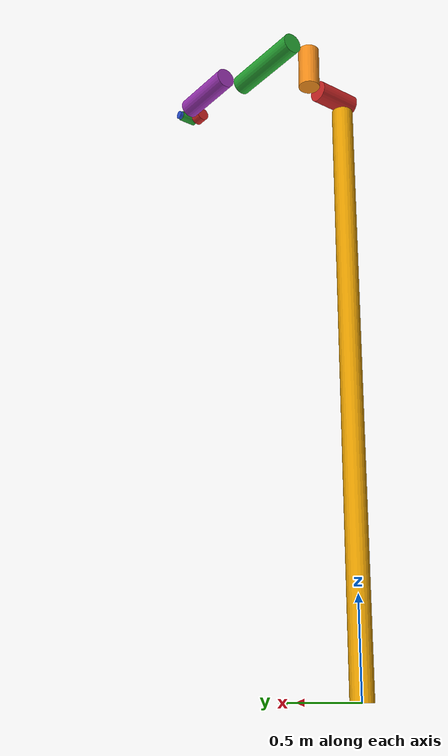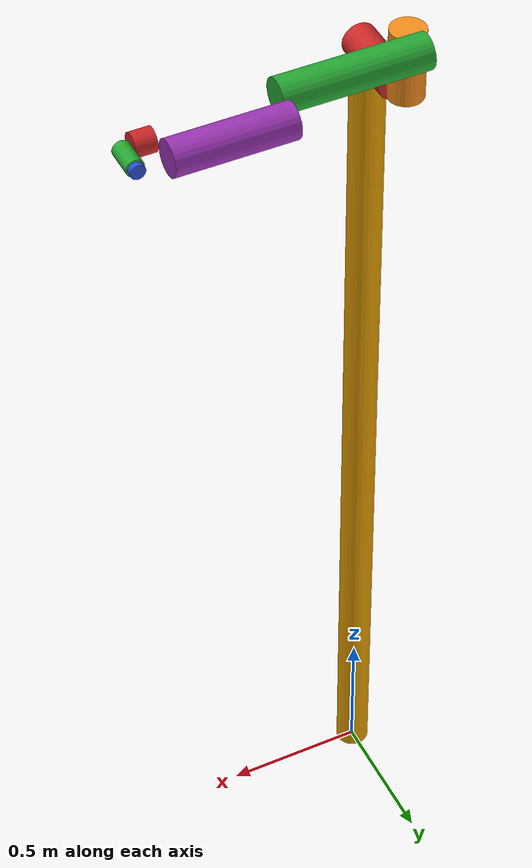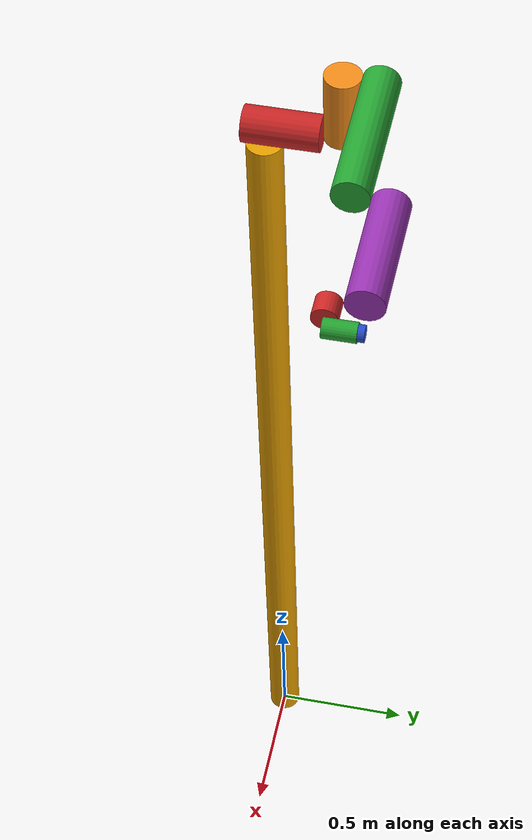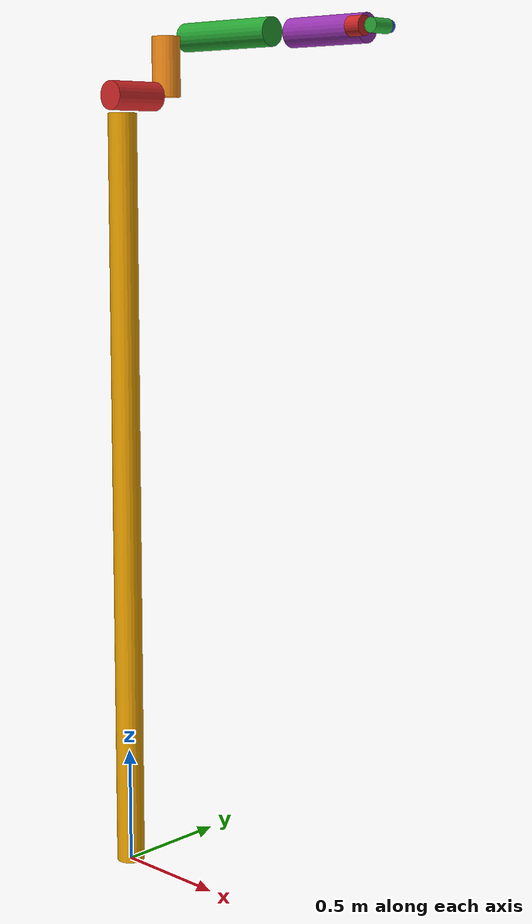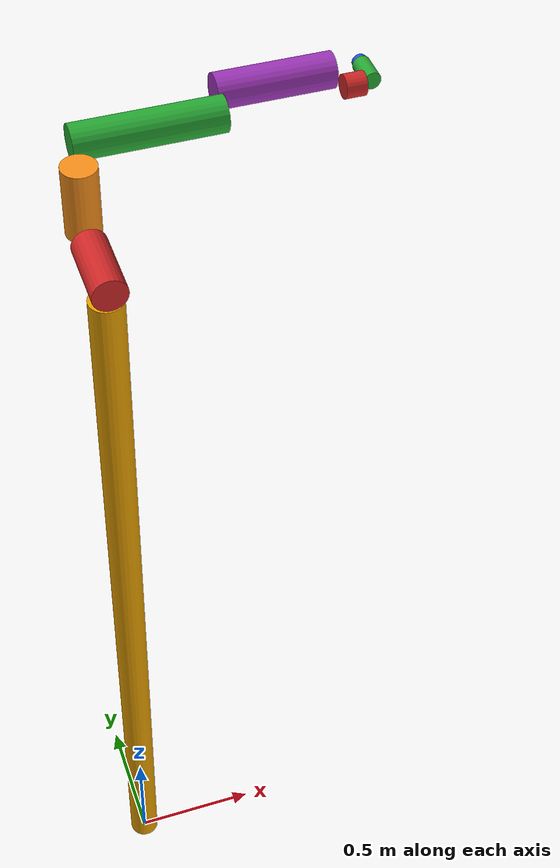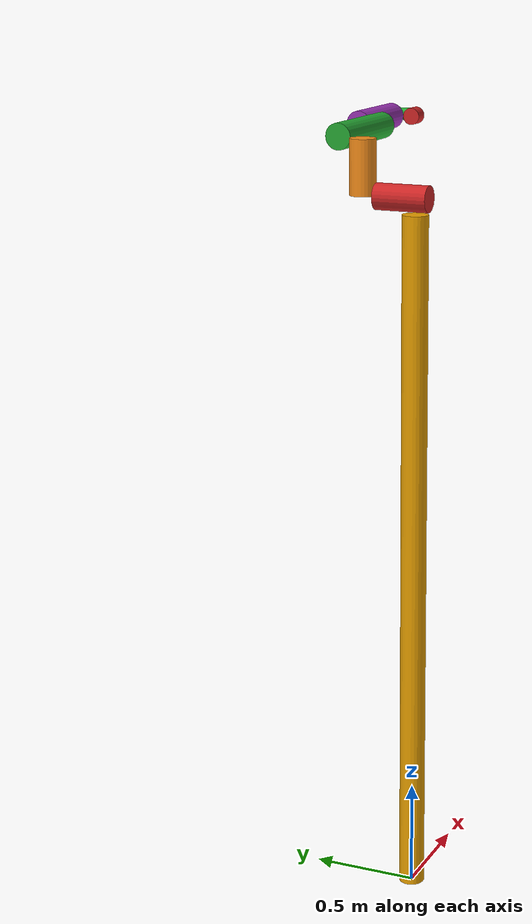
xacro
<?xml version="1.0"?>
<robot xmlns:xacro="http://wiki.ros.org/xacro"
       name="ur5" >

  <!-- common stuff -->
  <xacro:include filename="$(find man_gazebo)/urdf/common.gazebo.xacro" />

  <xacro:include filename="$(find man_gazebo)/urdf/manip.urdf.xacro" />

  <xacro:arm_robot prefix=""/>

<link name="world" />

  <joint name="world_joint" type="fixed">
    <parent link="world" />
    <child link = "base_link" />
    <origin xyz="0 0 0" rpy="0.0 0.0 0.0" />
  </joint>

</robot>

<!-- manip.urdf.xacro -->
<robot xmlns:xacro="http://wiki.ros.org/xacro">
  <xacro:include filename="$(find man_gazebo)/urdf/6dof/transmission_6dof.xacro" />
  <xacro:include filename="$(find man_gazebo)/urdf/gazebo.xacro" />

  <xacro:macro name="cylinder_inertial" params="radius length mass *origin">
    <inertial>
      <mass value="${mass}" />
      <xacro:insert_block name="origin" />
      <inertia ixx="${0.0833333 * mass * (3 * radius * radius + length * length)}" ixy="0.0" ixz="0.0"
        iyy="${0.0833333 * mass * (3 * radius * radius + length * length)}" iyz="0.0"
        izz="${0.5 * mass * radius * radius}" />
    </inertial>
  </xacro:macro>

<xacro:macro name="joint_limit" params="joint_type link_length ">
	<xacro:if value="${joint_type == 'revolute'}"  >
		<xacro:property name="joint_upper_limit" value="${pi}" />
		<xacro:property name="joint_lower_limit" value="${-pi}" />
	</xacro:if>
	<xacro:unless value="${joint_type == 'revolute'}"  >
		<xacro:property name="joint_upper_limit" value="${2*link_length}" />
		<xacro:property name="joint_lower_limit" value="${0}" />
	</xacro:unless>
	<limit lower="${joint_lower_limit}" upper="${joint_upper_limit}" effort="150.0" velocity="3.15"/>
</xacro:macro>

  <xacro:macro name="arm_robot" params="prefix ">

	<xacro:property name="joint0_type" value="prismatic" />
    <xacro:property name="joint1_type" value="revolute" />
	<xacro:property name="joint2_type" value="revolute" />
	<xacro:property name="joint3_type" value="revolute" />
	<xacro:property name="joint4_type" value="revolute" />
	<xacro:property name="joint5_type" value="revolute" />
	<xacro:property name="joint6_type" value="revolute" />

	<xacro:property name="joint0_axe" value="0 0 1" />
	<xacro:property name="joint1_axe" value="0 0 1" />
	<xacro:property name="joint2_axe" value="0 1 0" />
	<xacro:property name="joint3_axe" value="0 1 0" />
	<xacro:property name="joint4_axe" value="0 1 0" />
	<xacro:property name="joint5_axe" value="0 1 0" />
	<xacro:property name="joint6_axe" value="0 0 1" />

	<xacro:property name="link0_length" value="0.25" />
    <xacro:property name="base_length"  value="3.25" />
	<xacro:property name="link1_length" value="0.25" />
	<xacro:property name="link2_length" value="0.5" />
	<xacro:property name="link3_length" value="0.4" />
	<xacro:property name="link4_length" value="0.07" />
	<xacro:property name="link5_length" value="0.1" />
	<xacro:property name="link6_length" value="0.02" />

    <!-- Inertia parameters -->
	<xacro:property name="link0_mass" value="40.7" />
    <xacro:property name="base_mass" value="1.0" />
    <xacro:property name="link1_mass" value="3.7" />
    <xacro:property name="link2_mass" value="8.393" />
    <xacro:property name="link3_mass" value="2.275" />
    <xacro:property name="link4_mass" value="1.219" />
    <xacro:property name="link5_mass" value="1.219" />
    <xacro:property name="link6_mass" value="0.1879" />

	<xacro:property name="link0_radius" value="0.060" />
	<xacro:property name="base_radius" value="0.060" />
    <xacro:property name="link1_radius" value="0.060" />
    <xacro:property name="link2_radius" value="0.060" />
    <xacro:property name="link3_radius" value="0.060" />
    <xacro:property name="link4_radius" value="0.040" />
    <xacro:property name="link5_radius" value="0.030" />
    <xacro:property name="link6_radius" value="0.025" />

	<!--   Base Link -->
    <link name="${prefix}base_link" >
      <visual>
		<origin xyz="0 0 ${base_length/2}" rpy="0 0 0" />
        <geometry>
 			<cylinder radius="${base_radius}" length="${base_length}"/>
        </geometry>
      </visual>
      <collision>
			<origin xyz="0 0 ${base_length/2}" rpy="0 0 0" />
        <geometry>
			<cylinder radius="${base_radius}" length="${base_length}"/>
        </geometry>
      </collision>
      <xacro:cylinder_inertial radius="${base_radius}" length="${base_length}" mass="${base_mass}">
        <origin xyz="0.0 0.0 ${base_length/2}" rpy="0 0 0" />
      </xacro:cylinder_inertial>
    </link>

<!--  joint 0	-->
    <joint name="${prefix}joint0" type="${joint0_type}">
      <parent link="${prefix}base_link" />
      <child link = "${prefix}link0" />
      <origin xyz="0.0 0 ${base_length + link0_radius+0.01}" rpy="${-pi/2} 0.0 0" />
      <axis xyz="${joint0_axe}" />
	  <xacro:joint_limit joint_type="${joint0_type}" link_length="${link0_length*6}"/>
      <dynamics damping="0.0" friction="0.0"/>
    </joint>

<!--  link 0 -->
    <link name="${prefix}link0">
      <visual>
		<origin xyz="0 0 ${link0_radius} " rpy="0 0 0" />
        <geometry>
			<cylinder radius="${link0_radius}" length="${link0_length}"/>
        </geometry>
      </visual>
      <collision>
		 <origin xyz="0 0 ${link0_radius}" rpy="0 0 0" />
        <geometry>
			<cylinder radius="${link0_radius}" length="${link0_length}"  mass="${link0_mass}"/>
        </geometry>
      </collision>
      <xacro:cylinder_inertial radius="${link0_radius}" length="${link0_length}" mass="${link0_mass}">
        <origin xyz="0.0 0.0 ${link0_radius}" rpy="0 0 0" />
      </xacro:cylinder_inertial>
    </link>

<!--  joint 1	-->
    <joint name="${prefix}joint1" type="${joint1_type}">
      <parent link="${prefix}link0" />
      <child link = "${prefix}link1" />
      <origin xyz="0.0 0.0 ${link0_length}" rpy="${pi/2} 0 0" />
      <axis xyz="${joint1_axe}" />
	  <xacro:joint_limit joint_type="${joint1_type}" link_length="${link1_length}"/>
      <dynamics damping="0.0" friction="0.0"/>
    </joint>
<!--  link 1  -->
    <link name="${prefix}link1">
      <visual>
		<origin xyz="0 0 ${link1_length/2} " rpy="0 0 0" />
        <geometry>
			<cylinder radius="${link1_radius}" length="${link1_length}"/>
        </geometry>
      </visual>
      <collision>
		 <origin xyz="0 0 ${link1_length/2}" rpy="0 0 0" />
        <geometry>
			<cylinder radius="${link1_radius}" length="${link1_length}"  mass="${link1_mass}"/>
        </geometry>
      </collision>
      <xacro:cylinder_inertial radius="${link1_radius}" length="${link1_length}" mass="${link1_mass}">
        <origin xyz="0.0 0.0 ${link1_length/2}" rpy="0 0 0" />
      </xacro:cylinder_inertial>
    </link>
<!--  joint 2	-->
    <joint name="${prefix}joint2" type="${joint2_type}">
      <parent link="${prefix}link1" />
      <child link = "${prefix}link2" />
      <origin xyz="0.0 ${link1_radius * 2.0} ${link1_length }" rpy="0.0 ${pi/2.0} 0.0" />
      <axis xyz="${joint2_axe}" />
	  <xacro:joint_limit joint_type="${joint2_type}" link_length="${link2_length}"/>
      <dynamics damping="0.0" friction="0.0"/>
    </joint>
<!-- link 2	-->
    <link name="${prefix}link2">
      <visual>
		<origin xyz="0 0 ${link2_length / 2}" rpy="0 0 0" />
        <geometry>
			<cylinder radius="${link2_radius}" length="${link2_length}"/>
        </geometry>
      </visual>
      <collision>
	    <origin xyz="0 0 ${link2_length / 2 }" rpy="0 0 0" />
        <geometry>
		<cylinder radius="${link2_radius}" length="${link2_length}"/>
        </geometry>
      </collision>
      <xacro:cylinder_inertial radius="${link2_radius}" length="${link2_length}" mass="${link2_mass}">
        <origin xyz="0.0 0.0 ${link2_length / 2 }" rpy="0 0 0" />
      </xacro:cylinder_inertial>
    </link>
<!--  joint 3	-->
    <joint name="${prefix}joint3" type="${joint3_type}">
      <parent link="${prefix}link2" />
      <child link = "${prefix}link3" />
      <origin xyz="0.0 ${link2_radius*2.0} ${link2_length}" rpy="0.0 0.0 0.0" />
      <axis xyz="${joint3_axe}" />
	  <xacro:joint_limit joint_type="${joint3_type}" link_length="${link3_length}"/>
      <dynamics damping="0.0" friction="0.0"/>
    </joint>

<!--  link 3 -->
    <link name="${prefix}link3">
      <visual>
		<origin xyz="0 0 ${link3_length / 2 }" rpy="0 0 0" />
        <geometry>
		<cylinder radius="${link3_radius}" length="${link3_length}"/>
        </geometry>
      </visual>
      <collision>
		<origin xyz="0 0 ${link3_length / 2 }" rpy="0 0 0" />
        <geometry>
			<cylinder radius="${link3_radius}" length="${link3_length}"/>
        </geometry>
      </collision>
      <xacro:cylinder_inertial radius="${link3_radius}" length="${link3_length}" mass="${link3_mass}">
        <origin xyz="0 0 ${link3_length / 2 }" rpy="0 0 0" />
      </xacro:cylinder_inertial>
    </link>
<!--  joint 4	-->
    <joint name="${prefix}joint4" type="${joint4_type}">
      <parent link="${prefix}link3" />
      <child link = "${prefix}link4" />
      <origin xyz="0 -${link4_radius + link3_radius } ${link3_length}" rpy="0.0 0 0.0" />
      <axis xyz="${joint4_axe} " />
	  <xacro:joint_limit joint_type="${joint4_type}" link_length="${link4_length}"/>
      <dynamics damping="0.0" friction="0.0"/>
    </joint>

<!-- link 4 -->
    <link name="${prefix}link4">
      <visual>
		<origin xyz="0 0 ${link4_length/2}" rpy="0 0 0" />
        <geometry>
			   <cylinder radius="${link4_radius}" length="${link4_length}"/>
        </geometry>
      </visual>
      <collision>
		<origin xyz="0 0 ${link4_length/2}" rpy="0 0 0" />
        <geometry>
			   <cylinder radius="${link4_radius}" length="${link4_length}"/>
        </geometry>
      </collision>
      <xacro:cylinder_inertial radius="${link4_radius}" length="${link4_length}" mass="${link4_mass}">
        <origin xyz="0 0 ${link4_length/2}" rpy="0 0 0" />
      </xacro:cylinder_inertial>
    </link>
<!--  joint 5	-->
    <joint name="${prefix}joint5" type="${joint5_type}">
      <parent link="${prefix}link4" />
      <child link = "${prefix}link5" />
      <origin xyz="0 0 ${link4_length+link5_radius}" rpy=" ${-pi/2} 0 0" />
      <axis xyz="${joint5_axe}" />
	  <xacro:joint_limit joint_type="${joint5_type}" link_length="${link5_length}"/>
      <dynamics damping="0.0" friction="0.0"/>
    </joint>

<!-- link 5 -->
    <link name="${prefix}link5">
      <visual>
        <origin xyz=" 0 0 ${link5_length/2} " rpy="0 0 0" />
        <geometry>
		<cylinder radius="${link5_radius}" length="${link5_length}"/>
        </geometry>
      </visual>
      <collision>
        <origin xyz="0 0 ${link5_length/2} " rpy="0 0 0" />
        <geometry>
		<cylinder radius="${link5_radius}" length="${link5_length}"/>
        </geometry>
      </collision>
      <xacro:cylinder_inertial radius="${link5_radius}" length="${link5_length}" mass="${link5_mass}">
        <origin xyz="0 0 ${link5_length/2}" rpy="0 0 0" />
      </xacro:cylinder_inertial>
    </link>
<!--  joint 6	-->
    <joint name="${prefix}joint6" type="${joint6_type}">
      <parent link="${prefix}link5" />
      <child link = "${prefix}link6" />
      <origin xyz="0 0 ${link5_length } " rpy="0 0 0" />
      <axis xyz="${joint6_axe}" />
	  <xacro:joint_limit joint_type="${joint6_type}" link_length="${link6_length}"/>
      <dynamics damping="0.0" friction="0.0"/>
    </joint>
<!-- link 6 -->
    <link name="${prefix}link6">
      <visual>
        <origin xyz="0 0 ${link6_length/2}" rpy="0 0 0" />
        <geometry>
		<cylinder radius="${link6_radius}" length="${link6_length}"/>
        </geometry>
      </visual>
      <collision>
        <origin xyz="0 0 ${link6_length/2}" rpy="0 0 0" />
        <geometry>
		<cylinder radius="${link6_radius}" length="${link6_length}"/>
        </geometry>
      </collision>
      <xacro:cylinder_inertial radius="${link6_radius}" length="${link6_length}" mass="${link6_mass}">
        <origin xyz="0 0 ${link6_length/2}" rpy="0 0 0" />
      </xacro:cylinder_inertial>
    </link>

         <!-- fake joint - the rotation about z axe of the camera is not important -->
        <joint name="fake_joint" type="revolute">
      <parent link="${prefix}link6" />
      <child link = "camera_link" />
      <origin xyz="0.0  0.0 ${link6_length}" rpy="0.0 0.0 0" />
      <axis xyz="0 0 1"/>
      <xacro:joint_limit joint_type="revolute" link_length="0.1"/>
      <dynamics damping="0.0" friction="0.0"/>
        </joint>

    <!-- camera link -->
        <link name="camera_link">
          <collision>
            <geometry>
              <box size="0.01 0.01 0.01"/>
            </geometry>
            <origin rpy="0 0 0" xyz="0 0 0.005"/>
          </collision>
          <xacro:cylinder_inertial radius="0.01" length="0.01" mass="0.01">
            <origin xyz="0.0 0.0 0.005" rpy="0 0 0" />
          </xacro:cylinder_inertial>
        </link>

    <joint name="${prefix}ee_fixed_joint" type="fixed">
      <parent link="${prefix}camera_link" />
      <child link = "${prefix}ee_link" />
      <origin xyz="0.0  0.0 0.01" rpy="0.0 0.0 0" />

    </joint>

<!-- ee link -->
    <link name="${prefix}ee_link">
      <collision>
        <geometry>
          <box size="0.01 0.01 0.01"/>
        </geometry>
        <origin rpy="0 0 0" xyz="0 0 0.005"/>
      </collision>
	</link>

    <xacro:arm_transmission prefix="${prefix}" />
    <xacro:arm_gazebo prefix="${prefix}" />

  </xacro:macro>
</robot>

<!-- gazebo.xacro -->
<robot xmlns:xacro="http://wiki.ros.org/xacro">

<material name="Orange">
    <color rgba="${255/255} ${108/255} ${10/255} 1.0"/>
  </material>
<material name="Green">
    <color rgba="${0/255} ${255/255} ${0/255} 0.7"/>
</material>
<material name="LightGrey">
     <color rgba="0.7 0.7 0.7 1.0"/>
</material>
<material name="Blue">
     <color rgba="${0/255} ${0/255} ${255/255} 1.0"/>
</material>
<material name="Red">
     <color rgba="${255/255} ${0/255} ${0/255} 1.0"/>
</material>
<material name="Purple">
     <color rgba="0.5 0 0.5 1.0"/>
</material>

  <xacro:macro name="arm_gazebo" params="prefix">
    <gazebo reference="${prefix}link0">
      <selfCollide>true</selfCollide>
	  <material>Gazebo/Red</material>
    </gazebo>
    <gazebo reference="${prefix}link1">
      <selfCollide>true</selfCollide>
	  <material>Gazebo/Orange</material>
    </gazebo>
    <gazebo reference="${prefix}link2">
      <selfCollide>true</selfCollide>
	  <material>Gazebo/Green</material>
    </gazebo>
    <gazebo reference="${prefix}link3">
      <selfCollide>true</selfCollide>
	  <material>Gazebo/Purple</material>
    </gazebo>
    <gazebo reference="${prefix}link4">
      <selfCollide>true</selfCollide>
	  <material>Gazebo/Red</material>
    </gazebo>
    <gazebo reference="${prefix}link5">
      <selfCollide>true</selfCollide>
	  <material>Gazebo/Green</material>
    </gazebo>
    <gazebo reference="${prefix}link6">
      <selfCollide>true</selfCollide>
	  <material>Gazebo/Blue</material>
    </gazebo>
    <gazebo reference="${prefix}ee_link">
      <selfCollide>true</selfCollide>
    </gazebo>
    <gazebo reference="camera_link">
      <selfCollide>true</selfCollide>
    </gazebo>

  </xacro:macro>

</robot>
